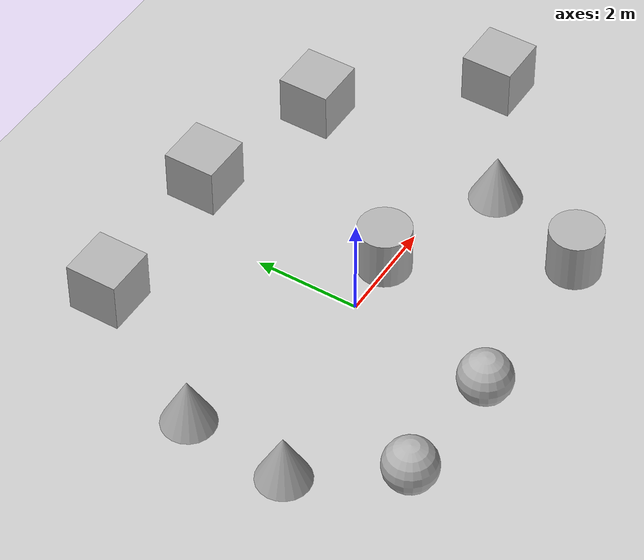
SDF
<sdf version='1.10'>
  <world name='empty'>
    <physics name='1ms' type='ignored'>
      <max_step_size>0.001</max_step_size>
      <real_time_factor>1</real_time_factor>
      <real_time_update_rate>1000</real_time_update_rate>
    </physics>
    <plugin name='gz::sim::systems::Physics' filename='gz-sim-physics-system'/>
    <plugin name='gz::sim::systems::UserCommands' filename='gz-sim-user-commands-system'/>
    <plugin name='gz::sim::systems::SceneBroadcaster' filename='gz-sim-scene-broadcaster-system'/>
    <plugin name='gz::sim::systems::Sensors' filename='gz-sim-sensors-system'>
      <render_engine>ogre2</render_engine>
    </plugin>
    <plugin name='gz::sim::systems::Contact' filename='gz-sim-contact-system'/>
    <plugin name='gz::sim::systems::Imu' filename='gz-sim-imu-system'/>
    <gravity>0 0 -9.8000000000000007</gravity>
    <magnetic_field>5.5644999999999998e-06 2.2875799999999999e-05 -4.2388400000000002e-05</magnetic_field>
    <atmosphere type='adiabatic'/>
    <scene>
      <ambient>0.400000006 0.400000006 0.400000006 1</ambient>
      <background>0.699999988 0.699999988 0.699999988 1</background>
      <shadows>true</shadows>
    </scene>
    <model name='ground_plane'>
      <static>true</static>
      <link name='link'>
        <collision name='collision'>
          <geometry>
            <plane>
              <normal>0 0 1</normal>
              <size>100 100</size>
            </plane>
          </geometry>
          <surface>
            <friction>
              <ode/>
            </friction>
            <bounce/>
            <contact/>
          </surface>
        </collision>
        <visual name='visual'>
          <geometry>
            <plane>
              <normal>0 0 1</normal>
              <size>100 100</size>
            </plane>
          </geometry>
          <material>
            <ambient>0.800000012 0.800000012 0.800000012 1</ambient>
            <diffuse>0.800000012 0.800000012 0.800000012 1</diffuse>
            <specular>0.800000012 0.800000012 0.800000012 1</specular>
          </material>
        </visual>
        <pose>0 0 0 0 0 0</pose>
        <inertial>
          <pose>0 0 0 0 0 0</pose>
          <mass>1</mass>
          <inertia>
            <ixx>1</ixx>
            <ixy>0</ixy>
            <ixz>0</ixz>
            <iyy>1</iyy>
            <iyz>0</iyz>
            <izz>1</izz>
          </inertia>
        </inertial>
        <enable_wind>false</enable_wind>
      </link>
      <pose>0 0 0 0 0 0</pose>
      <self_collide>false</self_collide>
    </model>
    <model name='box'>
      <pose>1.0462968306885756 3.8514336821163089 0.49999999990199806 1.380058407524736e-21 -4.0566468528448383e-21 6.0579372938736199e-22</pose>
      <link name='box_link'>
        <inertial>
          <inertia>
            <ixx>0.16666</ixx>
            <ixy>0</ixy>
            <ixz>0</ixz>
            <iyy>0.16666</iyy>
            <iyz>0</iyz>
            <izz>0.16666</izz>
          </inertia>
          <mass>1</mass>
          <pose>0 0 0 0 0 0</pose>
        </inertial>
        <collision name='box_collision'>
          <geometry>
            <box>
              <size>1 1 1</size>
            </box>
          </geometry>
          <surface>
            <friction>
              <ode/>
            </friction>
            <bounce/>
            <contact/>
          </surface>
        </collision>
        <visual name='box_visual'>
          <geometry>
            <box>
              <size>1 1 1</size>
            </box>
          </geometry>
          <material>
            <ambient>0.300000012 0.300000012 0.300000012 1</ambient>
            <diffuse>0.699999988 0.699999988 0.699999988 1</diffuse>
            <specular>1 1 1 1</specular>
          </material>
        </visual>
        <pose>0 0 0 0 0 0</pose>
        <enable_wind>false</enable_wind>
      </link>
      <static>false</static>
      <self_collide>false</self_collide>
    </model>
    <model name='box_0'>
      <pose>-2.120201566842066 3.7296623553800452 0.49999999990199806 1.380058407524736e-21 -4.0566468528448383e-21 6.0579372938736199e-22</pose>
      <link name='box_link'>
        <inertial>
          <inertia>
            <ixx>0.16666</ixx>
            <ixy>0</ixy>
            <ixz>0</ixz>
            <iyy>0.16666</iyy>
            <iyz>0</iyz>
            <izz>0.16666</izz>
          </inertia>
          <mass>1</mass>
          <pose>0 0 0 0 0 0</pose>
        </inertial>
        <collision name='box_collision'>
          <geometry>
            <box>
              <size>1 1 1</size>
            </box>
          </geometry>
          <surface>
            <friction>
              <ode/>
            </friction>
            <bounce/>
            <contact/>
          </surface>
        </collision>
        <visual name='box_visual'>
          <geometry>
            <box>
              <size>1 1 1</size>
            </box>
          </geometry>
          <material>
            <ambient>0.300000012 0.300000012 0.300000012 1</ambient>
            <diffuse>0.699999988 0.699999988 0.699999988 1</diffuse>
            <specular>1 1 1 1</specular>
          </material>
        </visual>
        <pose>0 0 0 0 0 0</pose>
        <enable_wind>false</enable_wind>
      </link>
      <static>false</static>
      <self_collide>false</self_collide>
    </model>
    <model name='cone'>
      <pose>-3.6923607456940943 1.0038463698972551 0.49999999993296756 5.2544931075677214e-17 -7.7132841038480847e-10 -7.6328321314384305e-23</pose>
      <link name='cone_link'>
        <inertial>
          <inertia>
            <ixx>0.074999999999999997</ixx>
            <ixy>0</ixy>
            <ixz>0</ixz>
            <iyy>0.074999999999999997</iyy>
            <iyz>0</iyz>
            <izz>0.074999999999999997</izz>
          </inertia>
          <mass>1</mass>
          <pose>0 0 0 0 0 0</pose>
        </inertial>
        <collision name='cone_collision'>
          <geometry>
            <cone>
              <radius>0.5</radius>
              <length>1</length>
            </cone>
          </geometry>
          <surface>
            <friction>
              <ode/>
            </friction>
            <bounce/>
            <contact/>
          </surface>
        </collision>
        <visual name='cone_visual'>
          <geometry>
            <cone>
              <radius>0.5</radius>
              <length>1</length>
            </cone>
          </geometry>
          <material>
            <ambient>0.300000012 0.300000012 0.300000012 1</ambient>
            <diffuse>0.699999988 0.699999988 0.699999988 1</diffuse>
            <specular>1 1 1 1</specular>
          </material>
        </visual>
        <pose>0 0 0 0 0 0</pose>
        <enable_wind>false</enable_wind>
      </link>
      <static>false</static>
      <self_collide>false</self_collide>
    </model>
    <model name='cone_0'>
      <pose>-3.8658612507794623 -1.0053961913454099 0.49999999993296756 5.2543814717421522e-17 -7.713284103989973e-10 2.5230230910124188e-23</pose>
      <link name='cone_link'>
        <inertial>
          <inertia>
            <ixx>0.074999999999999997</ixx>
            <ixy>0</ixy>
            <ixz>0</ixz>
            <iyy>0.074999999999999997</iyy>
            <iyz>0</iyz>
            <izz>0.074999999999999997</izz>
          </inertia>
          <mass>1</mass>
          <pose>0 0 0 0 0 0</pose>
        </inertial>
        <collision name='cone_collision'>
          <geometry>
            <cone>
              <radius>0.5</radius>
              <length>1</length>
            </cone>
          </geometry>
          <surface>
            <friction>
              <ode/>
            </friction>
            <bounce/>
            <contact/>
          </surface>
        </collision>
        <visual name='cone_visual'>
          <geometry>
            <cone>
              <radius>0.5</radius>
              <length>1</length>
            </cone>
          </geometry>
          <material>
            <ambient>0.300000012 0.300000012 0.300000012 1</ambient>
            <diffuse>0.699999988 0.699999988 0.699999988 1</diffuse>
            <specular>1 1 1 1</specular>
          </material>
        </visual>
        <pose>0 0 0 0 0 0</pose>
        <enable_wind>false</enable_wind>
      </link>
      <static>false</static>
      <self_collide>false</self_collide>
    </model>
    <model name='sphere'>
      <pose>-2.8702288149101354 -2.835584483993578 0.499999999902001 0 0 0</pose>
      <link name='sphere_link'>
        <inertial>
          <inertia>
            <ixx>0.10000000000000001</ixx>
            <ixy>0</ixy>
            <ixz>0</ixz>
            <iyy>0.10000000000000001</iyy>
            <iyz>0</iyz>
            <izz>0.10000000000000001</izz>
          </inertia>
          <mass>1</mass>
          <pose>0 0 0 0 0 0</pose>
        </inertial>
        <collision name='sphere_collision'>
          <geometry>
            <sphere>
              <radius>0.5</radius>
            </sphere>
          </geometry>
          <surface>
            <friction>
              <ode/>
            </friction>
            <bounce/>
            <contact/>
          </surface>
        </collision>
        <visual name='sphere_visual'>
          <geometry>
            <sphere>
              <radius>0.5</radius>
            </sphere>
          </geometry>
          <material>
            <ambient>0.300000012 0.300000012 0.300000012 1</ambient>
            <diffuse>0.699999988 0.699999988 0.699999988 1</diffuse>
            <specular>1 1 1 1</specular>
          </material>
        </visual>
        <pose>0 0 0 0 0 0</pose>
        <enable_wind>false</enable_wind>
      </link>
      <static>false</static>
      <self_collide>false</self_collide>
    </model>
    <model name='sphere_0'>
      <pose>-0.58012772646913735 -2.9294483877269943 0.499999999902001 0 0 0</pose>
      <link name='sphere_link'>
        <inertial>
          <inertia>
            <ixx>0.10000000000000001</ixx>
            <ixy>0</ixy>
            <ixz>0</ixz>
            <iyy>0.10000000000000001</iyy>
            <iyz>0</iyz>
            <izz>0.10000000000000001</izz>
          </inertia>
          <mass>1</mass>
          <pose>0 0 0 0 0 0</pose>
        </inertial>
        <collision name='sphere_collision'>
          <geometry>
            <sphere>
              <radius>0.5</radius>
            </sphere>
          </geometry>
          <surface>
            <friction>
              <ode/>
            </friction>
            <bounce/>
            <contact/>
          </surface>
        </collision>
        <visual name='sphere_visual'>
          <geometry>
            <sphere>
              <radius>0.5</radius>
            </sphere>
          </geometry>
          <material>
            <ambient>0.300000012 0.300000012 0.300000012 1</ambient>
            <diffuse>0.699999988 0.699999988 0.699999988 1</diffuse>
            <specular>1 1 1 1</specular>
          </material>
        </visual>
        <pose>0 0 0 0 0 0</pose>
        <enable_wind>false</enable_wind>
      </link>
      <static>false</static>
      <self_collide>false</self_collide>
    </model>
    <model name='cylinder'>
      <pose>2.8108270974886214 -2.7933786590065566 0.49999942638036005 5.8812638955499099e-19 1.7727750981024913e-19 1.5903598875650223e-21</pose>
      <link name='cylinder_link'>
        <inertial>
          <inertia>
            <ixx>0.14580000000000001</ixx>
            <ixy>0</ixy>
            <ixz>0</ixz>
            <iyy>0.14580000000000001</iyy>
            <iyz>0</iyz>
            <izz>0.125</izz>
          </inertia>
          <mass>1</mass>
          <pose>0 0 0 0 0 0</pose>
        </inertial>
        <collision name='cylinder_collision'>
          <geometry>
            <cylinder>
              <radius>0.5</radius>
              <length>1</length>
            </cylinder>
          </geometry>
          <surface>
            <friction>
              <ode/>
            </friction>
            <bounce/>
            <contact/>
          </surface>
        </collision>
        <visual name='cylinder_visual'>
          <geometry>
            <cylinder>
              <radius>0.5</radius>
              <length>1</length>
            </cylinder>
          </geometry>
          <material>
            <ambient>0.300000012 0.300000012 0.300000012 1</ambient>
            <diffuse>0.699999988 0.699999988 0.699999988 1</diffuse>
            <specular>1 1 1 1</specular>
          </material>
        </visual>
        <pose>0 0 0 0 0 0</pose>
        <enable_wind>false</enable_wind>
      </link>
      <static>false</static>
      <self_collide>false</self_collide>
    </model>
    <model name='box_1'>
      <pose>3.7878643110924717 3.1772933666029415 0.49999999990199806 6.2287739151293738e-22 9.3279666454713669e-22 -3.6315533669320137e-22</pose>
      <link name='box_link'>
        <inertial>
          <inertia>
            <ixx>0.16666</ixx>
            <ixy>0</ixy>
            <ixz>0</ixz>
            <iyy>0.16666</iyy>
            <iyz>0</iyz>
            <izz>0.16666</izz>
          </inertia>
          <mass>1</mass>
          <pose>0 0 0 0 0 0</pose>
        </inertial>
        <collision name='box_collision'>
          <geometry>
            <box>
              <size>1 1 1</size>
            </box>
          </geometry>
          <surface>
            <friction>
              <ode/>
            </friction>
            <bounce/>
            <contact/>
          </surface>
        </collision>
        <visual name='box_visual'>
          <geometry>
            <box>
              <size>1 1 1</size>
            </box>
          </geometry>
          <material>
            <ambient>0.300000012 0.300000012 0.300000012 1</ambient>
            <diffuse>0.699999988 0.699999988 0.699999988 1</diffuse>
            <specular>1 1 1 1</specular>
          </material>
        </visual>
        <pose>0 0 0 0 0 0</pose>
        <enable_wind>false</enable_wind>
      </link>
      <static>false</static>
      <self_collide>false</self_collide>
    </model>
    <model name='cylinder_0'>
      <pose>1.0936724372034572 0.07832542427986991 0.49999942638036005 2.1057280068553307e-19 -3.8266827930985741e-20 1.2961674758794423e-20</pose>
      <link name='cylinder_link'>
        <inertial>
          <inertia>
            <ixx>0.14580000000000001</ixx>
            <ixy>0</ixy>
            <ixz>0</ixz>
            <iyy>0.14580000000000001</iyy>
            <iyz>0</iyz>
            <izz>0.125</izz>
          </inertia>
          <mass>1</mass>
          <pose>0 0 0 0 0 0</pose>
        </inertial>
        <collision name='cylinder_collision'>
          <geometry>
            <cylinder>
              <radius>0.5</radius>
              <length>1</length>
            </cylinder>
          </geometry>
          <surface>
            <friction>
              <ode/>
            </friction>
            <bounce/>
            <contact/>
          </surface>
        </collision>
        <visual name='cylinder_visual'>
          <geometry>
            <cylinder>
              <radius>0.5</radius>
              <length>1</length>
            </cylinder>
          </geometry>
          <material>
            <ambient>0.300000012 0.300000012 0.300000012 1</ambient>
            <diffuse>0.699999988 0.699999988 0.699999988 1</diffuse>
            <specular>1 1 1 1</specular>
          </material>
        </visual>
        <pose>0 0 0 0 0 0</pose>
        <enable_wind>false</enable_wind>
      </link>
      <static>false</static>
      <self_collide>false</self_collide>
    </model>
    <model name='box_2'>
      <pose>6.09585306829754 0.62692848463756357 0.49999999990199806 6.2287739151293738e-22 9.3279666454713669e-22 -3.6315533669320137e-22</pose>
      <link name='box_link'>
        <inertial>
          <inertia>
            <ixx>0.16666</ixx>
            <ixy>0</ixy>
            <ixz>0</ixz>
            <iyy>0.16666</iyy>
            <iyz>0</iyz>
            <izz>0.16666</izz>
          </inertia>
          <mass>1</mass>
          <pose>0 0 0 0 0 0</pose>
        </inertial>
        <collision name='box_collision'>
          <geometry>
            <box>
              <size>1 1 1</size>
            </box>
          </geometry>
          <surface>
            <friction>
              <ode/>
            </friction>
            <bounce/>
            <contact/>
          </surface>
        </collision>
        <visual name='box_visual'>
          <geometry>
            <box>
              <size>1 1 1</size>
            </box>
          </geometry>
          <material>
            <ambient>0.300000012 0.300000012 0.300000012 1</ambient>
            <diffuse>0.699999988 0.699999988 0.699999988 1</diffuse>
            <specular>1 1 1 1</specular>
          </material>
        </visual>
        <pose>0 0 0 0 0 0</pose>
        <enable_wind>false</enable_wind>
      </link>
      <static>false</static>
      <self_collide>false</self_collide>
    </model>
    <model name='cone_1'>
      <pose>3.6232708192250738 -0.74373349157007085 0.49999999993296756 5.2544591086068952e-17 -7.7132841037290368e-10 -3.4184866375544543e-23</pose>
      <link name='cone_link'>
        <inertial>
          <inertia>
            <ixx>0.074999999999999997</ixx>
            <ixy>0</ixy>
            <ixz>0</ixz>
            <iyy>0.074999999999999997</iyy>
            <iyz>0</iyz>
            <izz>0.074999999999999997</izz>
          </inertia>
          <mass>1</mass>
          <pose>0 0 0 0 0 0</pose>
        </inertial>
        <collision name='cone_collision'>
          <geometry>
            <cone>
              <radius>0.5</radius>
              <length>1</length>
            </cone>
          </geometry>
          <surface>
            <friction>
              <ode/>
            </friction>
            <bounce/>
            <contact/>
          </surface>
        </collision>
        <visual name='cone_visual'>
          <geometry>
            <cone>
              <radius>0.5</radius>
              <length>1</length>
            </cone>
          </geometry>
          <material>
            <ambient>0.300000012 0.300000012 0.300000012 1</ambient>
            <diffuse>0.699999988 0.699999988 0.699999988 1</diffuse>
            <specular>1 1 1 1</specular>
          </material>
        </visual>
        <pose>0 0 0 0 0 0</pose>
        <enable_wind>false</enable_wind>
      </link>
      <static>false</static>
      <self_collide>false</self_collide>
    </model>
    <light name='sun' type='directional'>
      <pose>0 0 10 0 0 0</pose>
      <cast_shadows>true</cast_shadows>
      <intensity>1</intensity>
      <direction>-0.5 0.10000000000000001 -0.90000000000000002</direction>
      <diffuse>0.800000012 0.800000012 0.800000012 1</diffuse>
      <specular>0.200000003 0.200000003 0.200000003 1</specular>
      <attenuation>
        <range>1000</range>
        <linear>0.01</linear>
        <constant>0.90000000000000002</constant>
        <quadratic>0.001</quadratic>
      </attenuation>
      <spot>
        <inner_angle>0</inner_angle>
        <outer_angle>0</outer_angle>
        <falloff>0</falloff>
      </spot>
    </light>
  </world>
</sdf>
